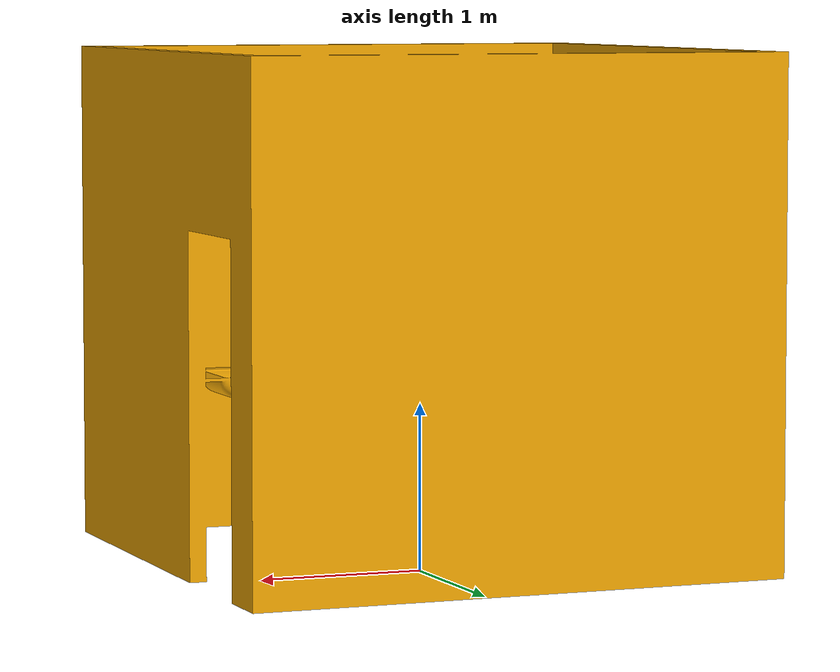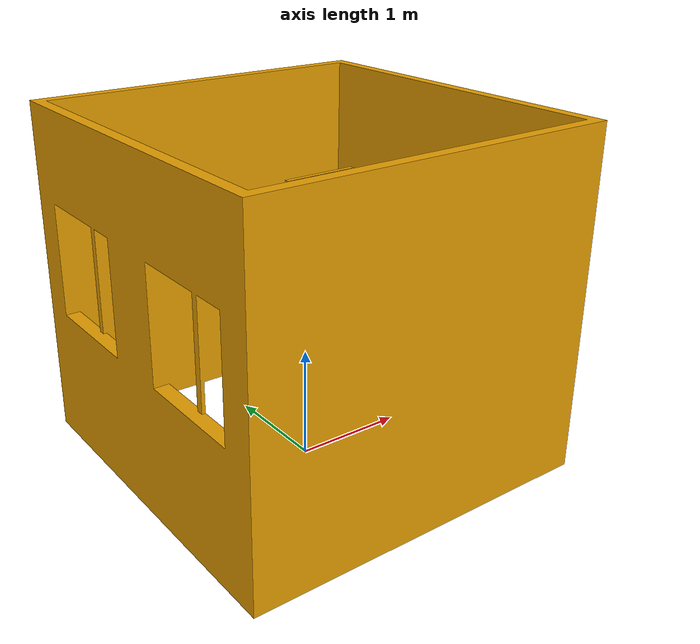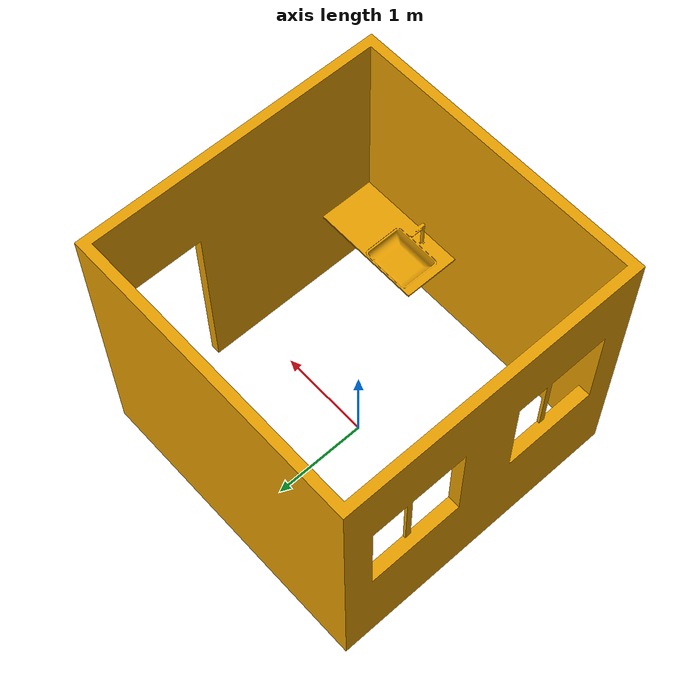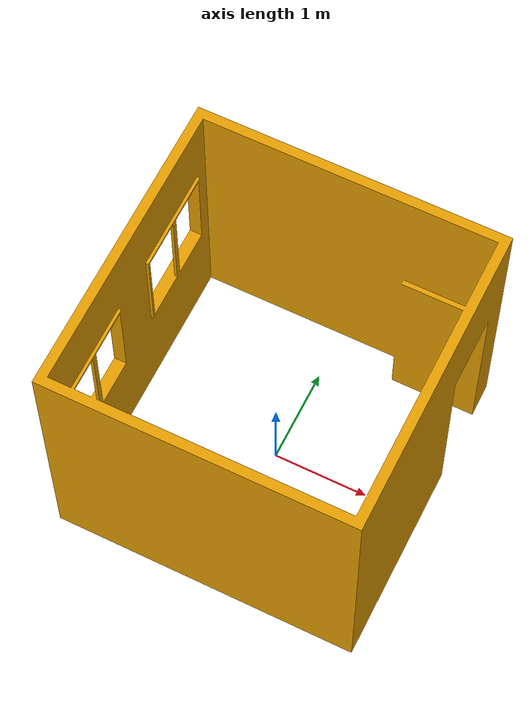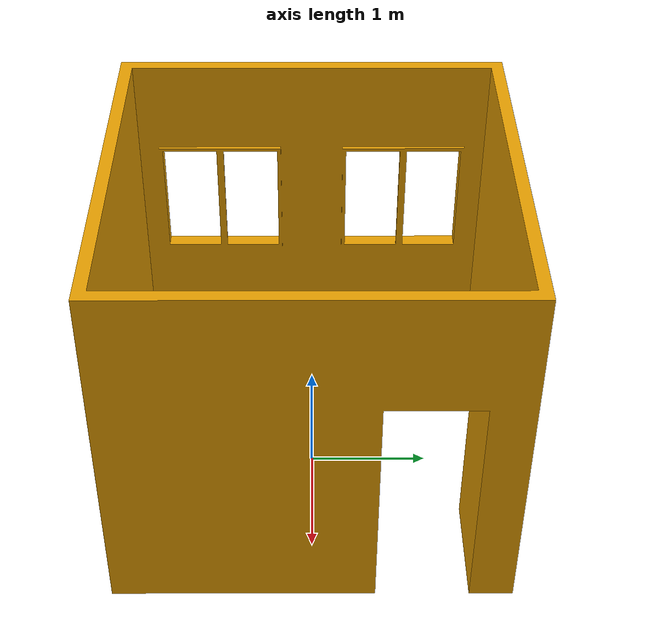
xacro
<?xml version="1.0" ?>
<robot name="single_artpark_world" xmlns:xacro="http://www.ros.org/wiki/xacro">

<link name="world_one">
  <inertial>
    <origin rpy="0 0 0" xyz="0 0 0"/>
    <mass value="5965.999999999999"/>
    <inertia ixx="10736.927018" ixy="0.0" ixz="0.0" iyy="5446.812018" iyz="0.0" izz="5300.058333"/>
  </inertial>
  <visual>
    <origin rpy="0 0 0" xyz="0 0 0"/>
    <geometry>
      <mesh filename="package://artpark_world_description/meshes/artpark_world_stl.stl" scale="0.001 0.001 0.001"/>
    </geometry>
  </visual>
</link>

</robot>
